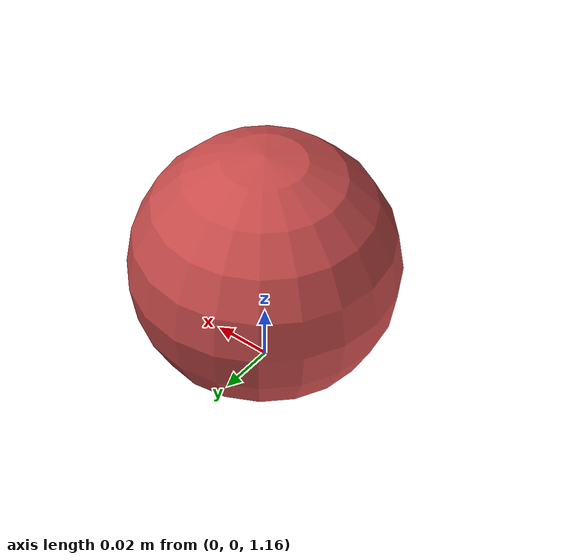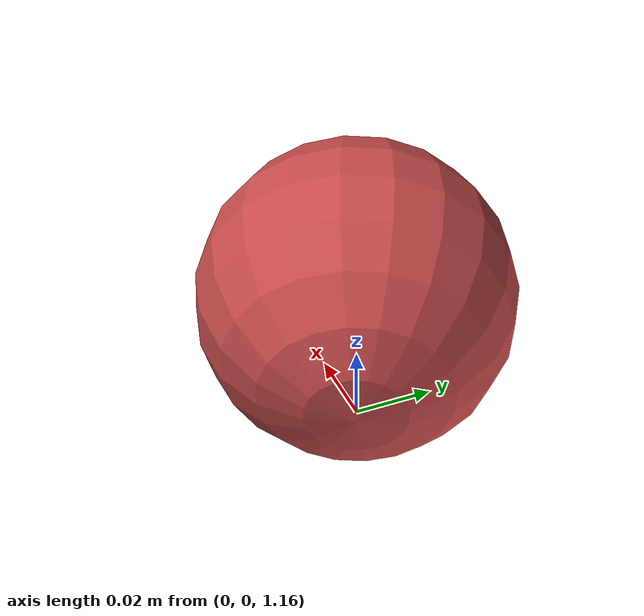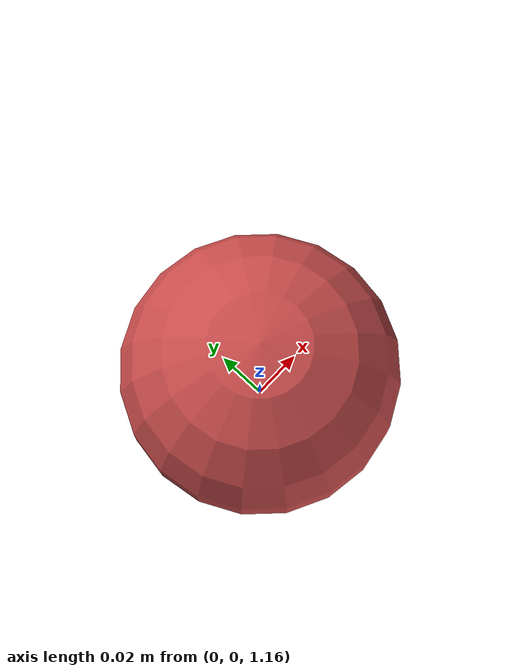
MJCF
<mujoco model="drop_002">
  <option timestep="0.001" gravity="0 0 -9.81"/>

  <visual>
    <headlight ambient="0.5 0.5 0.5"/>
  </visual>

  <asset>
    <texture name="grid" type="2d" builtin="checker" width="512" height="512" rgb1="0.2 0.3 0.4" rgb2="0.3 0.4 0.5"/>
    <material name="grid" texture="grid" texrepeat="1 1" reflectance="0.2"/>
    <material name="finger" rgba="0.8 0.3 0.3 1.0"/>
  </asset>

  <worldbody>
    <!-- Ground plane -->
    <geom name="floor" type="plane" size="2 2 0.1" material="grid"
          condim="6" friction="0.44905918667504113 0.005 0.0001" solref="0.02 1.2501536602989318"/>

    <!-- Sphere -->
    <body name="fingertip" pos="0 0 1.2012090938227817">
      <freejoint/>
      <geom name="finger" type="sphere" size="0.044975466322726976" mass="0.29836066811403444" material="finger"
            condim="6" friction="0.44905918667504113 0.005 0.0001" solref="0.02 1.2501536602989318"/>
      <site name="contact_site" pos="0 0 0" size="0.001"/>
    </body>
  </worldbody>

  <sensor>
    <touch name="finger_touch" site="contact_site"/>
    <framepos name="finger_pos" objtype="site" objname="contact_site"/>
    <framequat name="finger_quat" objtype="site" objname="contact_site"/>
    <framelinvel name="finger_vel" objtype="site" objname="contact_site"/>
  </sensor>
</mujoco>
